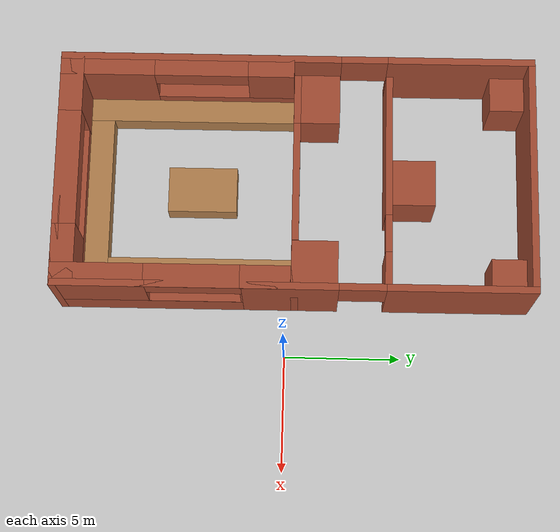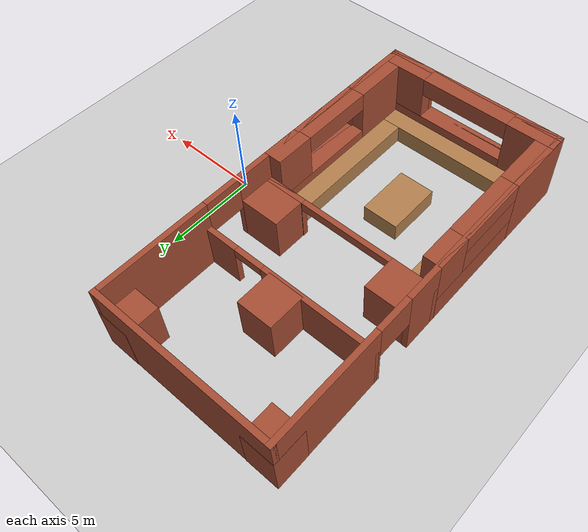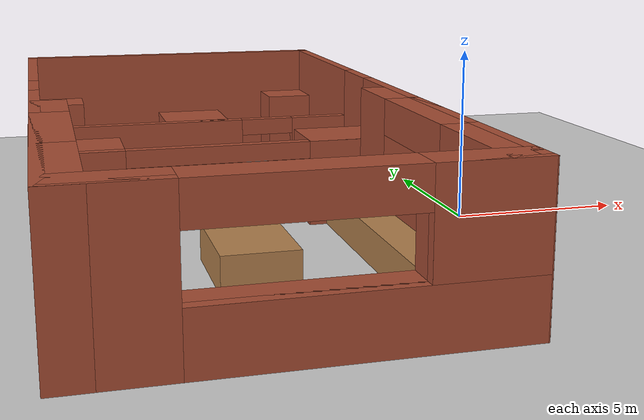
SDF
<sdf version="1.6">
 <world name="default">
  <light name="sun" type="directional">
   <pose>0 0 10 0 -0 0</pose>
   <diffuse>0.8 0.8 0.8 1</diffuse>
   <specular>0.1 0.1 0.1 1</specular>
   <attenuation>
    <range>1000</range>
    <constant>0.9</constant>
    <linear>0.01</linear>
    <quadratic>0.001</quadratic>
   </attenuation>
   <direction>-0.5 0.5 -1</direction>
  </light>
  <model name="ground_plane">
   <static>1</static>
   <link name="link">
    <collision name="collision">
     <geometry><plane><normal>0 0 1</normal><size>100 100</size></plane></geometry>
     <surface><friction><ode><mu>100</mu><mu2>50</mu2></ode></friction></surface>
    </collision>
    <visual name="visual">
     <cast_shadows>0</cast_shadows>
     <geometry><plane><normal>0 0 1</normal><size>100 100</size></plane></geometry>
     <material>
      <script><uri>file://media/materials/scripts/gazebo.material</uri><name>Gazebo/Grey</name></script>
     </material>
    </visual>
   </link>
  </model>
  <gravity>0 0 -9.8</gravity>
  <magnetic_field>6e-06 2.3e-05 -4.2e-05</magnetic_field>
  <atmosphere type="adiabatic"/>
  <physics name="default_physics" default="0" type="ode">
   <max_step_size>0.001</max_step_size>
   <real_time_factor>1</real_time_factor>
   <real_time_update_rate>1000</real_time_update_rate>
  </physics>
  <scene><ambient>0.4 0.4 0.4 1</ambient><background>0.7 0.7 0.7 1</background><shadows>1</shadows></scene>
  <spherical_coordinates>
   <surface_model>EARTH_WGS84</surface_model>
   <latitude_deg>0</latitude_deg>
   <longitude_deg>0</longitude_deg>
   <elevation>0</elevation>
   <heading_deg>0</heading_deg>
  </spherical_coordinates>
  <model name="mbzircbuilding">
   <pose>-7.24469 0.3776 0 0 -0 1.57379</pose>
   <link name="Wall_100">
    <pose>-10.0042 -0.00491 0 0 -0 1.5708</pose>
    <visual name="Wall_100_Visual_0">
     <pose>-3.82219 0 2 0 -0 0</pose>
     <geometry><box><size>2.65562 0.3 4</size></box></geometry>
     <material>
      <script><uri>file://media/materials/scripts/gazebo.material</uri><name>Gazebo/Bricks</name></script>
      <ambient>1 1 1 1</ambient>
     </material>
    </visual>
    <collision name="Wall_100_Collision_0">
     <geometry><box><size>2.65562 0.3 4</size></box></geometry>
     <pose>-3.82219 0 2 0 -0 0</pose>
    </collision>
    <visual name="Wall_100_Visual_1">
     <pose>1.32781 0 0.75 0 -0 0</pose>
     <geometry><box><size>7.64438 0.3 1.5</size></box></geometry>
     <material>
      <script><uri>file://media/materials/scripts/gazebo.material</uri><name>Gazebo/Bricks</name></script>
      <ambient>1 1 1 1</ambient>
     </material>
    </visual>
    <collision name="Wall_100_Collision_1">
     <geometry><box><size>7.64438 0.3 1.5</size></box></geometry>
     <pose>1.32781 0 0.75 0 -0 0</pose>
    </collision>
    <visual name="Wall_100_Visual_2">
     <pose>3.82781 0 2.75 0 -0 0</pose>
     <geometry><box><size>2.64439 0.3 2.5</size></box></geometry>
     <material>
      <script><uri>file://media/materials/scripts/gazebo.material</uri><name>Gazebo/Bricks</name></script>
      <ambient>1 1 1 1</ambient>
     </material>
    </visual>
    <collision name="Wall_100_Collision_2">
     <geometry><box><size>2.64439 0.3 2.5</size></box></geometry>
     <pose>3.82781 0 2.75 0 -0 0</pose>
    </collision>
    <visual name="Wall_100_Visual_3">
     <pose>0.005615 0 3.5 0 -0 0</pose>
     <geometry><box><size>5 0.3 1</size></box></geometry>
     <material>
      <script><uri>file://media/materials/scripts/gazebo.material</uri><name>Gazebo/Bricks</name></script>
      <ambient>1 1 1 1</ambient>
     </material>
    </visual>
    <collision name="Wall_100_Collision_3">
     <geometry><box><size>5 0.3 1</size></box></geometry>
     <pose>0.005615 0 3.5 0 -0 0</pose>
    </collision>
   </link>
   <link name="Wall_101">
    <pose>-0.004155 4.99509 0 0 -0 0</pose>
    <visual name="Wall_101_Visual_0">
     <pose>-4.14331 0 2 0 -0 0</pose>
     <geometry><box><size>12.0134 0.3 4</size></box></geometry>
     <material>
      <script><uri>file://media/materials/scripts/gazebo.material</uri><name>Gazebo/Bricks</name></script>
      <ambient>1 1 1 1</ambient>
     </material>
    </visual>
    <collision name="Wall_101_Collision_0">
     <geometry><box><size>12.0134 0.3 4</size></box></geometry>
     <pose>-4.14331 0 2 0 -0 0</pose>
    </collision>
    <visual name="Wall_101_Visual_1">
     <pose>6.9966 0 2 0 -0 0</pose>
     <geometry><box><size>6.3068 0.3 4</size></box></geometry>
     <material>
      <script><uri>file://media/materials/scripts/gazebo.material</uri><name>Gazebo/Bricks</name></script>
      <ambient>1 1 1 1</ambient>
     </material>
    </visual>
    <collision name="Wall_101_Collision_1">
     <geometry><box><size>6.3068 0.3 4</size></box></geometry>
     <pose>6.9966 0 2 0 -0 0</pose>
    </collision>
    <visual name="Wall_101_Visual_2">
     <pose>2.85329 0 3 0 -0 0</pose>
     <geometry><box><size>1.97982 0.3 2</size></box></geometry>
     <material>
      <script><uri>file://media/materials/scripts/gazebo.material</uri><name>Gazebo/Bricks</name></script>
      <ambient>1 1 1 1</ambient>
     </material>
    </visual>
    <collision name="Wall_101_Collision_2">
     <geometry><box><size>1.97982 0.3 2</size></box></geometry>
     <pose>2.85329 0 3 0 -0 0</pose>
    </collision>
   </link>
   <link name="Wall_102">
    <collision name="Wall_102_Collision">
     <geometry><box><size>10.3 0.3 4</size></box></geometry>
     <pose>0 0 2 0 -0 0</pose>
    </collision>
    <visual name="Wall_102_Visual">
     <pose>0 0 2 0 -0 0</pose>
     <geometry><box><size>10.3 0.3 4</size></box></geometry>
     <material>
      <script><uri>file://media/materials/scripts/gazebo.material</uri><name>Gazebo/Bricks</name></script>
      <ambient>1 1 1 1</ambient>
     </material>
    </visual>
    <pose>9.99584 -0.00491 0 0 0 -1.5708</pose>
   </link>
   <link name="Wall_103">
    <pose>-0.004155 -5.00491 0 0 -0 3.14159</pose>
    <visual name="Wall_103_Visual_0">
     <pose>-6.99687 0 2 0 -0 0</pose>
     <geometry><box><size>6.30626 0.3 4</size></box></geometry>
     <material>
      <script><uri>file://media/materials/scripts/gazebo.material</uri><name>Gazebo/Bricks</name></script>
      <ambient>1 1 1 1</ambient>
     </material>
    </visual>
    <collision name="Wall_103_Collision_0">
     <geometry><box><size>6.30626 0.3 4</size></box></geometry>
     <pose>-6.99687 0 2 0 -0 0</pose>
    </collision>
    <visual name="Wall_103_Visual_1">
     <pose>0.164493 0 2 0 -0 0</pose>
     <geometry><box><size>4.04757 0.3 4</size></box></geometry>
     <material>
      <script><uri>file://media/materials/scripts/gazebo.material</uri><name>Gazebo/Bricks</name></script>
      <ambient>1 1 1 1</ambient>
     </material>
    </visual>
    <collision name="Wall_103_Collision_1">
     <geometry><box><size>4.04757 0.3 4</size></box></geometry>
     <pose>0.164493 0 2 0 -0 0</pose>
    </collision>
    <visual name="Wall_103_Visual_2">
     <pose>6.16914 0 0.75 0 -0 0</pose>
     <geometry><box><size>7.96172 0.3 1.5</size></box></geometry>
     <material>
      <script><uri>file://media/materials/scripts/gazebo.material</uri><name>Gazebo/Bricks</name></script>
      <ambient>1 1 1 1</ambient>
     </material>
    </visual>
    <collision name="Wall_103_Collision_2">
     <geometry><box><size>7.96172 0.3 1.5</size></box></geometry>
     <pose>6.16914 0 0.75 0 -0 0</pose>
    </collision>
    <visual name="Wall_103_Visual_3">
     <pose>8.16914 0 2.75 0 -0 0</pose>
     <geometry><box><size>3.96172 0.3 2.5</size></box></geometry>
     <material>
      <script><uri>file://media/materials/scripts/gazebo.material</uri><name>Gazebo/Bricks</name></script>
      <ambient>1 1 1 1</ambient>
     </material>
    </visual>
    <collision name="Wall_103_Collision_3">
     <geometry><box><size>3.96172 0.3 2.5</size></box></geometry>
     <pose>8.16914 0 2.75 0 -0 0</pose>
    </collision>
    <visual name="Wall_103_Visual_4">
     <pose>-2.85152 0 3 0 -0 0</pose>
     <geometry><box><size>1.98445 0.3 2</size></box></geometry>
     <material>
      <script><uri>file://media/materials/scripts/gazebo.material</uri><name>Gazebo/Bricks</name></script>
      <ambient>1 1 1 1</ambient>
     </material>
    </visual>
    <collision name="Wall_103_Collision_4">
     <geometry><box><size>1.98445 0.3 2</size></box></geometry>
     <pose>-2.85152 0 3 0 -0 0</pose>
    </collision>
    <visual name="Wall_103_Visual_5">
     <pose>4.18828 0 3.5 0 -0 0</pose>
     <geometry><box><size>4 0.3 1</size></box></geometry>
     <material>
      <script><uri>file://media/materials/scripts/gazebo.material</uri><name>Gazebo/Bricks</name></script>
      <ambient>1 1 1 1</ambient>
     </material>
    </visual>
    <collision name="Wall_103_Collision_5">
     <geometry><box><size>4 0.3 1</size></box></geometry>
     <pose>4.18828 0 3.5 0 -0 0</pose>
    </collision>
   </link>
   <link name="Wall_105">
    <collision name="Wall_105_Collision">
     <geometry><box><size>1.81 1.8 2.5</size></box></geometry>
     <pose>0 0 1.25 0 -0 0</pose>
    </collision>
    <visual name="Wall_105_Visual">
     <pose>0 0 1.25 0 -0 0</pose>
     <geometry><box><size>1.81 1.8 2.5</size></box></geometry>
     <material>
      <script><uri>file://media/materials/scripts/gazebo.material</uri><name>Gazebo/Bricks</name></script>
      <ambient>1 1 1 1</ambient>
     </material>
    </visual>
    <pose>9.25915 4.24991 0 0 0 -1.5708</pose>
   </link>
   <link name="Wall_109">
    <collision name="Wall_109_Collision">
     <geometry><box><size>1.81 1.8 2.5</size></box></geometry>
     <pose>0 0 1.25 0 -0 0</pose>
    </collision>
    <visual name="Wall_109_Visual">
     <pose>0 0 1.25 0 -0 0</pose>
     <geometry><box><size>1.81 1.8 2.5</size></box></geometry>
     <material>
      <script><uri>file://media/materials/scripts/gazebo.material</uri><name>Gazebo/Bricks</name></script>
      <ambient>1 1 1 1</ambient>
     </material>
    </visual>
    <pose>9.25915 -4.23634 0 0 -0 1.5708</pose>
   </link>
   <link name="Wall_114">
    <pose>3.99585 -0.00491 0 0 -0 1.5708</pose>
    <visual name="Wall_114_Visual_0">
     <pose>-4.1125 0 1.25 0 -0 0</pose>
     <geometry><box><size>2.075 0.3 2.5</size></box></geometry>
     <material>
      <script><uri>file://media/materials/scripts/gazebo.material</uri><name>Gazebo/Bricks</name></script>
      <ambient>1 1 1 1</ambient>
     </material>
    </visual>
    <collision name="Wall_114_Collision_0">
     <geometry><box><size>2.075 0.3 2.5</size></box></geometry>
     <pose>-4.1125 0 1.25 0 -0 0</pose>
    </collision>
    <visual name="Wall_114_Visual_1">
     <pose>1.8625 0 1.25 0 -0 0</pose>
     <geometry><box><size>6.575 0.3 2.5</size></box></geometry>
     <material>
      <script><uri>file://media/materials/scripts/gazebo.material</uri><name>Gazebo/Bricks</name></script>
      <ambient>1 1 1 1</ambient>
     </material>
    </visual>
    <collision name="Wall_114_Collision_1">
     <geometry><box><size>6.575 0.3 2.5</size></box></geometry>
     <pose>1.8625 0 1.25 0 -0 0</pose>
    </collision>
    <visual name="Wall_114_Visual_2">
     <pose>-2.25 0 2.25 0 -0 0</pose>
     <geometry><box><size>1.65 0.3 0.5</size></box></geometry>
     <material>
      <script><uri>file://media/materials/scripts/gazebo.material</uri><name>Gazebo/Bricks</name></script>
      <ambient>1 1 1 1</ambient>
     </material>
    </visual>
    <collision name="Wall_114_Collision_2">
     <geometry><box><size>1.65 0.3 0.5</size></box></geometry>
     <pose>-2.25 0 2.25 0 -0 0</pose>
    </collision>
   </link>
   <link name="Wall_116">
    <pose>-0.004155 -0.00491 0 0 0 -1.5708</pose>
    <visual name="Wall_116_Visual_0">
     <pose>-3.89497 0 1.25 0 -0 0</pose>
     <geometry><box><size>2.51007 0.3 2.5</size></box></geometry>
     <material>
      <script><uri>file://media/materials/scripts/gazebo.material</uri><name>Gazebo/Bricks</name></script>
      <ambient>1 1 1 1</ambient>
     </material>
    </visual>
    <collision name="Wall_116_Collision_0">
     <geometry><box><size>2.51007 0.3 2.5</size></box></geometry>
     <pose>-3.89497 0 1.25 0 -0 0</pose>
    </collision>
    <visual name="Wall_116_Visual_1">
     <pose>3.88489 0 1.25 0 -0 0</pose>
     <geometry><box><size>2.53023 0.3 2.5</size></box></geometry>
     <material>
      <script><uri>file://media/materials/scripts/gazebo.material</uri><name>Gazebo/Bricks</name></script>
      <ambient>1 1 1 1</ambient>
     </material>
    </visual>
    <collision name="Wall_116_Collision_1">
     <geometry><box><size>2.53023 0.3 2.5</size></box></geometry>
     <pose>3.88489 0 1.25 0 -0 0</pose>
    </collision>
    <visual name="Wall_116_Visual_2">
     <pose>-0.010078 0 2.25 0 -0 0</pose>
     <geometry><box><size>5.2597 0.3 0.5</size></box></geometry>
     <material>
      <script><uri>file://media/materials/scripts/gazebo.material</uri><name>Gazebo/Bricks</name></script>
      <ambient>1 1 1 1</ambient>
     </material>
    </visual>
    <collision name="Wall_116_Collision_2">
     <geometry><box><size>5.2597 0.3 0.5</size></box></geometry>
     <pose>-0.010078 0 2.25 0 -0 0</pose>
    </collision>
   </link>
   <link name="Wall_118">
    <collision name="Wall_118_Collision">
     <geometry><box><size>2.5 2 2.5</size></box></geometry>
     <pose>0 0 1.25 0 -0 0</pose>
    </collision>
    <visual name="Wall_118_Visual">
     <pose>0 0 1.25 0 -0 0</pose>
     <geometry><box><size>2.5 2 2.5</size></box></geometry>
     <material>
      <script><uri>file://media/materials/scripts/gazebo.material</uri><name>Gazebo/Bricks</name></script>
      <ambient>1 1 1 1</ambient>
     </material>
    </visual>
    <pose>0.850845 -3.89791 0 0 0 -1.5708</pose>
   </link>
   <link name="Wall_120">
    <collision name="Wall_120_Collision">
     <geometry><box><size>2.5 2 2.5</size></box></geometry>
     <pose>0 0 1.25 0 -0 0</pose>
    </collision>
    <visual name="Wall_120_Visual">
     <pose>0 0 1.25 0 -0 0</pose>
     <geometry><box><size>2.5 2 2.5</size></box></geometry>
     <material>
      <script><uri>file://media/materials/scripts/gazebo.material</uri><name>Gazebo/Bricks</name></script>
      <ambient>1 1 1 1</ambient>
     </material>
    </visual>
    <pose>0.842282 3.8833 0 0 0 -1.5708</pose>
   </link>
   <link name="Wall_124">
    <collision name="Wall_124_Collision">
     <geometry><box><size>2.002 2 2.5</size></box></geometry>
     <pose>0 0 1.25 0 -0 0</pose>
    </collision>
    <visual name="Wall_124_Visual">
     <pose>0 0 1.25 0 -0 0</pose>
     <geometry><box><size>2.002 2 2.5</size></box></geometry>
     <material>
      <script><uri>file://media/materials/scripts/gazebo.material</uri><name>Gazebo/Bricks</name></script>
      <ambient>1 1 1 1</ambient>
     </material>
    </visual>
    <pose>4.99585 -0.00491 0 0 -0 0</pose>
   </link>
   <link name="Wall_126">
    <pose>-5.15916 4.64709 0 0 -0 0</pose>
    <visual name="Wall_126_Visual_0">
     <pose>-2.98787 0 2 0 -0 0</pose>
     <geometry><box><size>4.02427 1 4</size></box></geometry>
     <material>
      <script><uri>file://media/materials/scripts/gazebo.material</uri><name>Gazebo/Bricks</name></script>
      <ambient>1 1 1 1</ambient>
     </material>
    </visual>
    <collision name="Wall_126_Collision_0">
     <geometry><box><size>4.02427 1 4</size></box></geometry>
     <pose>-2.98787 0 2 0 -0 0</pose>
    </collision>
    <visual name="Wall_126_Visual_1">
     <pose>2.01213 0 0.75 0 -0 0</pose>
     <geometry><box><size>5.97573 1 1.5</size></box></geometry>
     <material>
      <script><uri>file://media/materials/scripts/gazebo.material</uri><name>Gazebo/Bricks</name></script>
      <ambient>1 1 1 1</ambient>
     </material>
    </visual>
    <collision name="Wall_126_Collision_1">
     <geometry><box><size>5.97573 1 1.5</size></box></geometry>
     <pose>2.01213 0 0.75 0 -0 0</pose>
    </collision>
    <visual name="Wall_126_Visual_2">
     <pose>4.01213 0 2.75 0 -0 0</pose>
     <geometry><box><size>1.97573 1 2.5</size></box></geometry>
     <material>
      <script><uri>file://media/materials/scripts/gazebo.material</uri><name>Gazebo/Bricks</name></script>
      <ambient>1 1 1 1</ambient>
     </material>
    </visual>
    <collision name="Wall_126_Collision_2">
     <geometry><box><size>1.97573 1 2.5</size></box></geometry>
     <pose>4.01213 0 2.75 0 -0 0</pose>
    </collision>
    <visual name="Wall_126_Visual_3">
     <pose>1.02427 0 3.5 0 -0 0</pose>
     <geometry><box><size>4 1 1</size></box></geometry>
     <material>
      <script><uri>file://media/materials/scripts/gazebo.material</uri><name>Gazebo/Bricks</name></script>
      <ambient>1 1 1 1</ambient>
     </material>
    </visual>
    <collision name="Wall_126_Collision_3">
     <geometry><box><size>4 1 1</size></box></geometry>
     <pose>1.02427 0 3.5 0 -0 0</pose>
    </collision>
   </link>
   <link name="Wall_128">
    <pose>-9.65529 0.000959 0 0 0 -1.5708</pose>
    <visual name="Wall_128_Visual_0">
     <pose>-3.81237 0 2 0 -0 0</pose>
     <geometry><box><size>2.62526 1 4</size></box></geometry>
     <material>
      <script><uri>file://media/materials/scripts/gazebo.material</uri><name>Gazebo/Bricks</name></script>
      <ambient>1 1 1 1</ambient>
     </material>
    </visual>
    <collision name="Wall_128_Collision_0">
     <geometry><box><size>2.62526 1 4</size></box></geometry>
     <pose>-3.81237 0 2 0 -0 0</pose>
    </collision>
    <visual name="Wall_128_Visual_1">
     <pose>1.31263 0 0.75 0 -0 0</pose>
     <geometry><box><size>7.62474 1 1.5</size></box></geometry>
     <material>
      <script><uri>file://media/materials/scripts/gazebo.material</uri><name>Gazebo/Bricks</name></script>
      <ambient>1 1 1 1</ambient>
     </material>
    </visual>
    <collision name="Wall_128_Collision_1">
     <geometry><box><size>7.62474 1 1.5</size></box></geometry>
     <pose>1.31263 0 0.75 0 -0 0</pose>
    </collision>
    <visual name="Wall_128_Visual_2">
     <pose>3.81263 0 2.75 0 -0 0</pose>
     <geometry><box><size>2.62474 1 2.5</size></box></geometry>
     <material>
      <script><uri>file://media/materials/scripts/gazebo.material</uri><name>Gazebo/Bricks</name></script>
      <ambient>1 1 1 1</ambient>
     </material>
    </visual>
    <collision name="Wall_128_Collision_2">
     <geometry><box><size>2.62474 1 2.5</size></box></geometry>
     <pose>3.81263 0 2.75 0 -0 0</pose>
    </collision>
    <visual name="Wall_128_Visual_3">
     <pose>0.000255 0 3.5 0 -0 0</pose>
     <geometry><box><size>5 1 1</size></box></geometry>
     <material>
      <script><uri>file://media/materials/scripts/gazebo.material</uri><name>Gazebo/Bricks</name></script>
      <ambient>1 1 1 1</ambient>
     </material>
    </visual>
    <collision name="Wall_128_Collision_3">
     <geometry><box><size>5 1 1</size></box></geometry>
     <pose>0.000255 0 3.5 0 -0 0</pose>
    </collision>
   </link>
   <link name="Wall_130">
    <pose>-5.15457 -4.65191 0 0 -0 0</pose>
    <visual name="Wall_130_Visual_0">
     <pose>-3.05553 0 2 0 -0 0</pose>
     <geometry><box><size>3.88894 1 4</size></box></geometry>
     <material>
      <script><uri>file://media/materials/scripts/gazebo.material</uri><name>Gazebo/Bricks</name></script>
      <ambient>1 1 1 1</ambient>
     </material>
    </visual>
    <collision name="Wall_130_Collision_0">
     <geometry><box><size>3.88894 1 4</size></box></geometry>
     <pose>-3.05553 0 2 0 -0 0</pose>
    </collision>
    <visual name="Wall_130_Visual_1">
     <pose>1.94447 0 0.75 0 -0 0</pose>
     <geometry><box><size>6.11106 1 1.5</size></box></geometry>
     <material>
      <script><uri>file://media/materials/scripts/gazebo.material</uri><name>Gazebo/Bricks</name></script>
      <ambient>1 1 1 1</ambient>
     </material>
    </visual>
    <collision name="Wall_130_Collision_1">
     <geometry><box><size>6.11106 1 1.5</size></box></geometry>
     <pose>1.94447 0 0.75 0 -0 0</pose>
    </collision>
    <visual name="Wall_130_Visual_2">
     <pose>3.94447 0 2.75 0 -0 0</pose>
     <geometry><box><size>2.11106 1 2.5</size></box></geometry>
     <material>
      <script><uri>file://media/materials/scripts/gazebo.material</uri><name>Gazebo/Bricks</name></script>
      <ambient>1 1 1 1</ambient>
     </material>
    </visual>
    <collision name="Wall_130_Collision_2">
     <geometry><box><size>2.11106 1 2.5</size></box></geometry>
     <pose>3.94447 0 2.75 0 -0 0</pose>
    </collision>
    <visual name="Wall_130_Visual_3">
     <pose>0.88894 0 3.5 0 -0 0</pose>
     <geometry><box><size>4 1 1</size></box></geometry>
     <material>
      <script><uri>file://media/materials/scripts/gazebo.material</uri><name>Gazebo/Bricks</name></script>
      <ambient>1 1 1 1</ambient>
     </material>
    </visual>
    <collision name="Wall_130_Collision_3">
     <geometry><box><size>4 1 1</size></box></geometry>
     <pose>0.88894 0 3.5 0 -0 0</pose>
    </collision>
   </link>
   <link name="Wall_132">
    <collision name="Wall_132_Collision">
     <geometry><box><size>8.995 1.02 1</size></box></geometry>
     <pose>0 0 0.5 0 -0 0</pose>
    </collision>
    <visual name="Wall_132_Visual">
     <pose>0 0 0.5 0 -0 0</pose>
     <geometry><box><size>8.995 1.02 1</size></box></geometry>
     <material>
      <script><uri>file://media/materials/scripts/gazebo.material</uri><name>Gazebo/Wood</name></script>
      <ambient>1 1 1 1</ambient>
     </material>
    </visual>
    <pose>-4.65383 3.6518 0 0 -0 0</pose>
   </link>
   <link name="Wall_134">
    <collision name="Wall_134_Collision">
     <geometry><box><size>7.3 1.02 1</size></box></geometry>
     <pose>0 0 0.5 0 -0 0</pose>
    </collision>
    <visual name="Wall_134_Visual">
     <pose>0 0 0.5 0 -0 0</pose>
     <geometry><box><size>7.3 1.02 1</size></box></geometry>
     <material>
      <script><uri>file://media/materials/scripts/gazebo.material</uri><name>Gazebo/Wood</name></script>
      <ambient>1 1 1 1</ambient>
     </material>
    </visual>
    <pose>-8.64016 -0.50491 0 0 0 -1.5708</pose>
   </link>
   <link name="Wall_136">
    <collision name="Wall_136_Collision">
     <geometry><box><size>7.995 1.02 1</size></box></geometry>
     <pose>0 0 0.5 0 -0 0</pose>
    </collision>
    <visual name="Wall_136_Visual">
     <pose>0 0 0.5 0 -0 0</pose>
     <geometry><box><size>7.995 1.02 1</size></box></geometry>
     <material>
      <script><uri>file://media/materials/scripts/gazebo.material</uri><name>Gazebo/Wood</name></script>
      <ambient>1 1 1 1</ambient>
     </material>
    </visual>
    <pose>-4.13557 -3.64559 0 0 -0 0</pose>
   </link>
   <link name="Wall_138">
    <collision name="Wall_138_Collision">
     <geometry><box><size>3 2 1</size></box></geometry>
     <pose>0 0 0.5 0 -0 0</pose>
    </collision>
    <visual name="Wall_138_Visual">
     <pose>0 0 0.5 0 -0 0</pose>
     <geometry><box><size>3 2 1</size></box></geometry>
     <material>
      <script><uri>file://media/materials/scripts/gazebo.material</uri><name>Gazebo/Wood</name></script>
      <ambient>1 1 1 1</ambient>
     </material>
    </visual>
    <pose>-4.10416 -0.00491 0 0 -0 0</pose>
   </link>
   <link name="Window_2">
    <collision name="Window_2_Collision">
     <geometry><box><size>4 0.17 1.5</size></box></geometry>
     <pose>0 0 0.75 0 -0 0</pose>
    </collision>
    <visual name="Window_2_Visual">
     <pose>0 0 0.75 0 -0 0</pose>
     <geometry><box><size>4 0.17 1.5</size></box></geometry>
     <material>
      <script><uri>file://media/materials/scripts/gazebo.material</uri><name>Gazebo/Grey</name></script>
     </material>
    </visual>
    <pose>-4.13478 4.95394 1.5 0 -0 0</pose>
   </link>
   <static>1</static>
  </model>
 </world>
</sdf>
